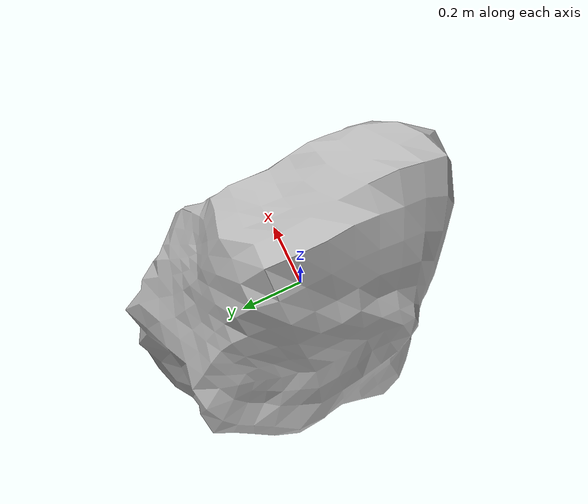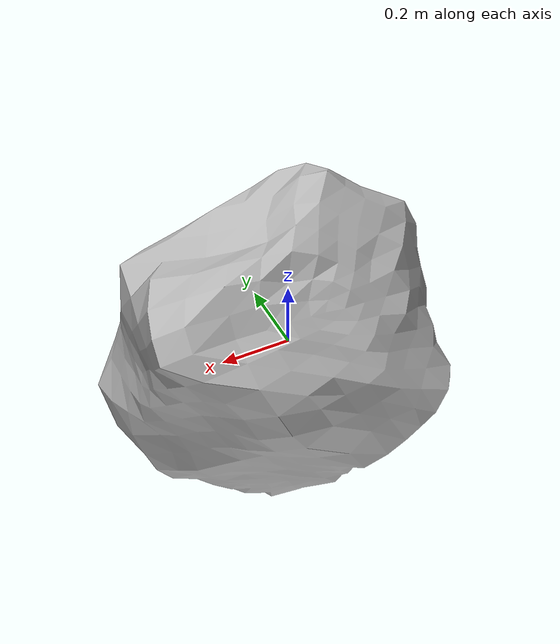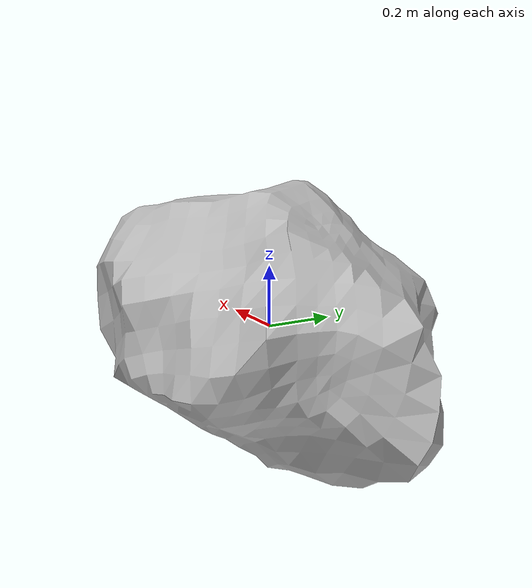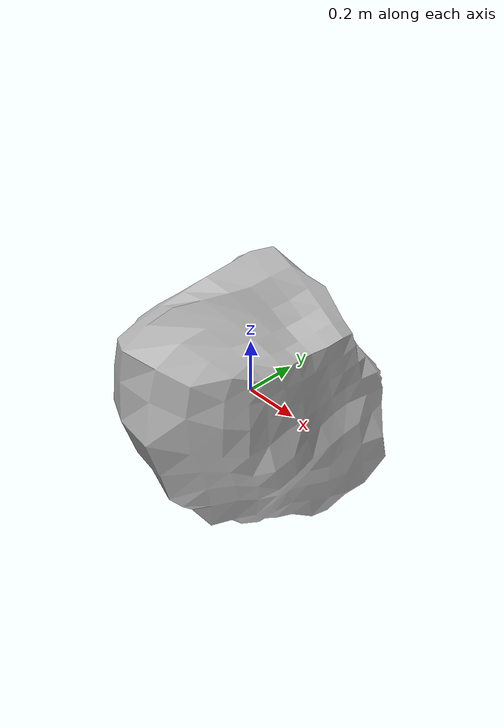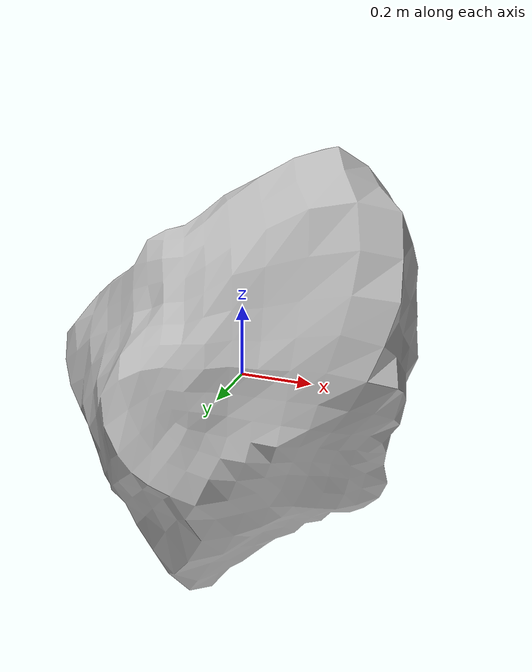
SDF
<?xml version="1.0" ?>
<sdf version="1.5">
  <model name="rocha">
    <link name="link">
      <collision name="collision">
        <geometry>
          <mesh>
            <scale>0.7 0.7 0.7</scale>
            <uri>model://rocha/meshes/rocha.stl</uri>
          </mesh>
        </geometry>
      </collision>
      <visual name="visual">
        <geometry>
          <mesh>
            <scale>0.7 0.7 0.7</scale>
            <uri>model://rocha/meshes/rocha.dae</uri>
          </mesh>
        </geometry>
      </visual>
    </link>
  </model>
</sdf>
